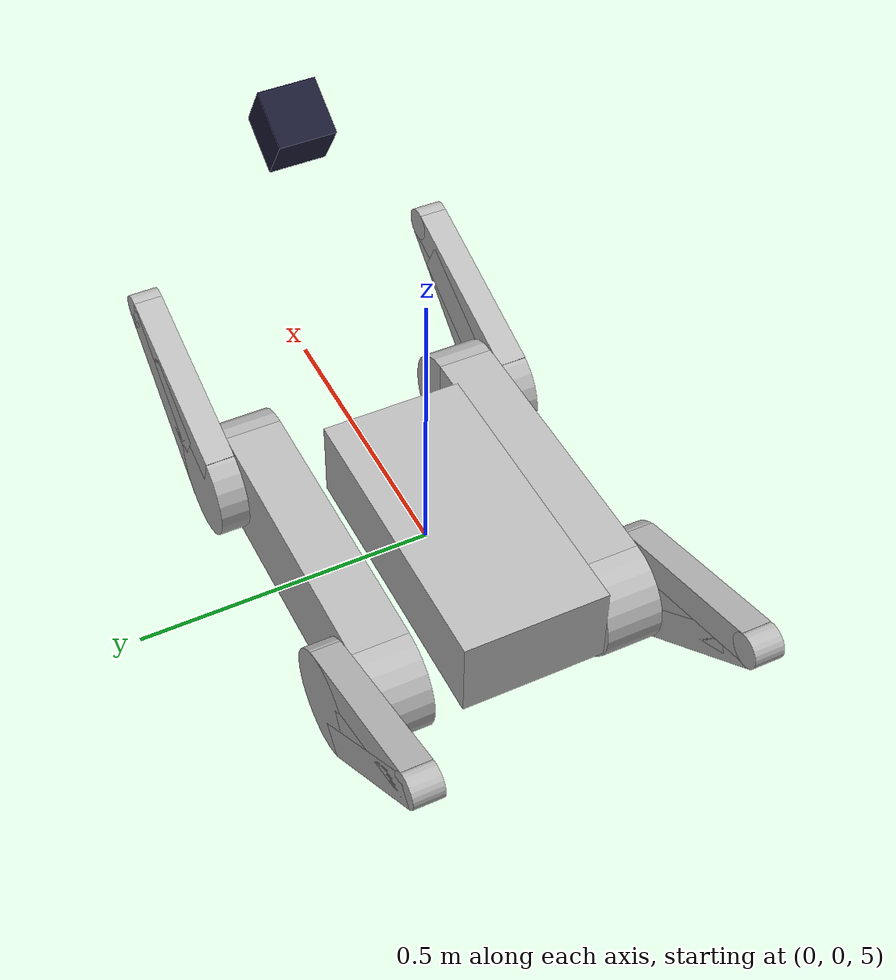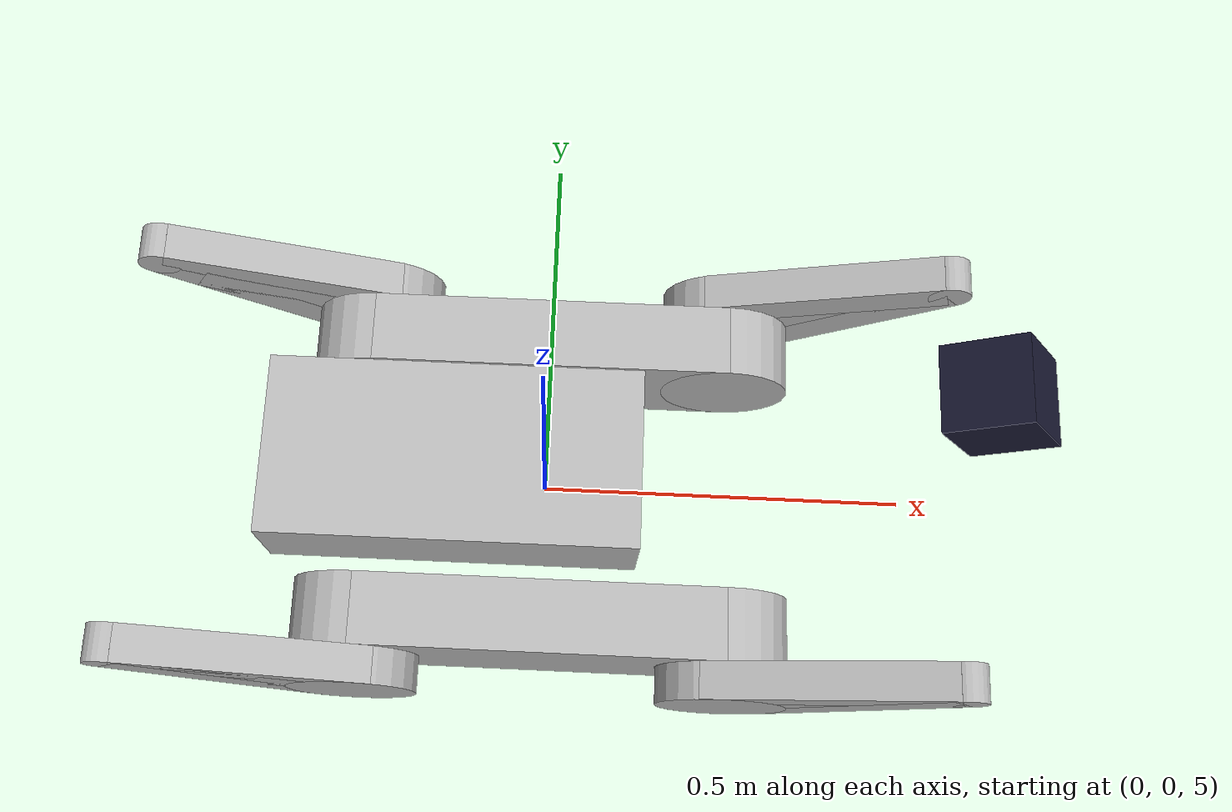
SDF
<sdf version="1.9">
 <world name="world_demo">
  <physics type="dart">
   <real_time_factor>2</real_time_factor>
   <dart><solver><solver_type>pgs</solver_type></solver><collision_detector>ode</collision_detector></dart>
   <max_step_size>0.001</max_step_size>
   <real_time_update_rate>1000</real_time_update_rate>
  </physics>
  <plugin name="gz::sim::systems::Physics" filename="gz-sim-physics-system"/>
  <plugin name="gz::sim::systems::Sensors" filename="gz-sim-sensors-system">
   <render_engine>ogre2</render_engine>
  </plugin>
  <plugin name="gz::sim::systems::SceneBroadcaster" filename="gz-sim-scene-broadcaster-system"/>
  <gravity>0 0 -9.8000000000000007</gravity>
  <atmosphere type="adiabatic"/>
  <magnetic_field>5.5644999999999998e-06 2.2875799999999999e-05 -4.2388400000000002e-05</magnetic_field>
  <scene>
   <ambient>0.400000006 0.400000006 0.400000006 1</ambient>
   <background>0.699999988 0.699999988 0.699999988 1</background>
   <shadows>true</shadows>
  </scene>
  <model name="simple_tracked">
   <pose>0 -0 5 0 0 0</pose>
   <plugin name="gz::sim::systems::TriggeredPublisher" filename="gz-sim-triggered-publisher-system">
    <input type="gz.msgs.Int32" topic="/keyboard/keypress"><match field="data">87</match></input>
    <output type="gz.msgs.Twist" topic="/model/simple_tracked/cmd_vel">linear: {x: 1.0}, angular: {z: 0.0}</output>
   </plugin>
   <plugin name="gz::sim::systems::TriggeredPublisher" filename="gz-sim-triggered-publisher-system">
    <input type="gz.msgs.Int32" topic="/keyboard/keypress"><match field="data">88</match></input>
    <output type="gz.msgs.Twist" topic="/model/simple_tracked/cmd_vel">linear: {x: -1.0}, angular: {z: 0.0}</output>
   </plugin>
   <plugin name="gz::sim::systems::TriggeredPublisher" filename="gz-sim-triggered-publisher-system">
    <input type="gz.msgs.Int32" topic="/keyboard/keypress"><match field="data">83</match></input>
    <output type="gz.msgs.Twist" topic="/model/simple_tracked/cmd_vel">linear: {x: 0.0}, angular: {z: 0.0}</output>
   </plugin>
   <plugin name="gz::sim::systems::TriggeredPublisher" filename="gz-sim-triggered-publisher-system">
    <input type="gz.msgs.Int32" topic="/keyboard/keypress"><match field="data">65</match></input>
    <output type="gz.msgs.Twist" topic="/model/simple_tracked/cmd_vel">linear: {x: 0.0}, angular: {z: 1.0}</output>
   </plugin>
   <plugin name="gz::sim::systems::TriggeredPublisher" filename="gz-sim-triggered-publisher-system">
    <input type="gz.msgs.Int32" topic="/keyboard/keypress"><match field="data">68</match></input>
    <output type="gz.msgs.Twist" topic="/model/simple_tracked/cmd_vel">linear: {x: 0.0}, angular: {z: -1.0}</output>
   </plugin>
   <plugin name="gz::sim::systems::TriggeredPublisher" filename="gz-sim-triggered-publisher-system">
    <input type="gz.msgs.Int32" topic="/keyboard/keypress"><match field="data">81</match></input>
    <output type="gz.msgs.Twist" topic="/model/simple_tracked/cmd_vel">linear: {x: 1.0}, angular: {z: 1.0}</output>
   </plugin>
   <plugin name="gz::sim::systems::TriggeredPublisher" filename="gz-sim-triggered-publisher-system">
    <input type="gz.msgs.Int32" topic="/keyboard/keypress"><match field="data">69</match></input>
    <output type="gz.msgs.Twist" topic="/model/simple_tracked/cmd_vel">linear: {x: 1.0}, angular: {z: -1.0}</output>
   </plugin>
   <plugin name="gz::sim::systems::TriggeredPublisher" filename="gz-sim-triggered-publisher-system">
    <input type="gz.msgs.Int32" topic="/keyboard/keypress"><match field="data">90</match></input>
    <output type="gz.msgs.Twist" topic="/model/simple_tracked/cmd_vel">linear: {x: -1.0}, angular: {z: 1.0}</output>
   </plugin>
   <plugin name="gz::sim::systems::TriggeredPublisher" filename="gz-sim-triggered-publisher-system">
    <input type="gz.msgs.Int32" topic="/keyboard/keypress"><match field="data">67</match></input>
    <output type="gz.msgs.Twist" topic="/model/simple_tracked/cmd_vel">linear: {x: -1.0}, angular: {z: -1.0}</output>
   </plugin>
   <link name="base_link">
    <sensor name="sensorsensor" type="imu">
     <always_on>1</always_on>
     <update_rate>1</update_rate>
     <visualize>1</visualize>
     <topic>imu</topic>
    </sensor>
    <inertial>
     <pose>-0.122 0 0.11799999999999999 1.5708 0 0</pose>
     <mass>1</mass>
     <inertia>
      <ixx>0.10019</ixx>
      <ixy>0</ixy>
      <ixz>0</ixz>
      <iyy>0.34504299999999999</iyy>
      <iyz>0</iyz>
      <izz>0.30204399999999998</izz>
     </inertia>
    </inertial>
    <collision name="base_link_collision">
     <pose>-0.122 0 0.11799999999999999 0 0 0</pose>
     <geometry><box><size>0.50017 0.24093000000000001 0.13900000000000001</size></box></geometry>
    </collision>
    <visual name="base_link_visual">
     <pose>-0.122 0 0.11799999999999999 0 0 0</pose>
     <geometry><box><size>0.50017 0.24093000000000001 0.13900000000000001</size></box></geometry>
    </visual>
   </link>
   <link name="dc">
    <pose>.5 0 .5 0 1 0</pose>
    <inertial>
     <mass>1</mass>
     <inertia>
      <ixx>0.00016666700000000001</ixx>
      <iyy>0.00016666700000000001</iyy>
      <izz>0.00016666700000000001</izz>
      <ixy>0</ixy>
      <ixz>0</ixz>
      <iyz>0</iyz>
     </inertia>
    </inertial>
    <collision name="collision">
     <geometry><box><size>0.10000000000000001 0.10000000000000001 0.10000000000000001</size></box></geometry>
    </collision>
    <visual name="visual">
     <geometry><box><size>0.10000000000000001 0.10000000000000001 0.10000000000000001</size></box></geometry>
     <material>
      <ambient>0.100000001 0.100000001 0.100000001 1</ambient>
      <diffuse>0.100000001 0.100000001 0.200000003 1</diffuse>
      <specular>0 0 0 0</specular>
      <emissive>0 0 0 1</emissive>
     </material>
    </visual>
    <sensor name="depth_camera1" type="depth_camera">
     <topic>dec</topic>
     <visualize>true</visualize>
     <update_rate>4</update_rate>
     <enable_metrics>false</enable_metrics>
     <camera name="__default__">
      <horizontal_fov>1.0469999999999999</horizontal_fov>
      <image><width>2</width><height>2</height><format>R_FLOAT16</format><anti_aliasing>0</anti_aliasing></image>
      <camera_info_topic>__default__</camera_info_topic>
      <triggered>false</triggered>
      <clip><near>0.10000000000000001</near><far>100</far></clip>
      <save enabled="false"><path>__default__</path></save>
      <visibility_mask>4294967295</visibility_mask>
      <noise><type>none</type><mean>0</mean><stddev>0</stddev></noise>
      <distortion><k1>0</k1><k2>0</k2><k3>0</k3><p1>0</p1><p2>0</p2><center>0.5 0.5</center></distortion>
      <lens>
       <type>equidistant</type>
       <scale_to_hfov>true</scale_to_hfov>
       <cutoff_angle>1.5707</cutoff_angle>
       <env_texture_size>4</env_texture_size>
      </lens>
     </camera>
    </sensor>
   </link>
   <joint name="j" type="fixed"><child>base_link</child><parent>dc</parent></joint>
   <link name="left_track">
    <pose>0 0.19849999999999923 0 0 0 0</pose>
    <inertial>
     <pose>0 0 0.0141 0 0 0</pose>
     <mass>6.0599999999999996</mass>
     <inertia>
      <ixx>0.0027309999999999999</ixx>
      <ixy>0</ixy>
      <ixz>0</ixz>
      <iyy>0.032554</iyy>
      <iyz>1.5e-05</iyz>
      <izz>0.031391000000000002</izz>
     </inertia>
    </inertial>
    <collision name="left_track_collision">
     <pose>0 0 0.018550000000000001 1.5708 -5.5511151231257827e-17 1.5708</pose>
     <geometry><box><size>0.097280000000000005 0.18093999999999999 0.5</size></box></geometry>
     <surface>
      <friction><ode><mu>0.69999999999999996</mu><mu2>150</mu2><fdir1>0 1 0</fdir1></ode></friction>
     </surface>
    </collision>
    <collision name="left_track_collision_1">
     <pose>0.25 0 0.018550000000000001 1.5708 0 0</pose>
     <geometry>
      <cylinder><length>0.097280000000000005</length><radius>0.090469999999999995</radius></cylinder>
     </geometry>
     <surface>
      <friction><ode><mu>0.69999999999999996</mu><mu2>150</mu2><fdir1>0 1 0</fdir1></ode></friction>
     </surface>
    </collision>
    <collision name="left_track_collision_2">
     <pose>-0.25 0 0.018550000000000001 1.5708 0 0</pose>
     <geometry>
      <cylinder><length>0.097280000000000005</length><radius>0.090469999999999995</radius></cylinder>
     </geometry>
     <surface>
      <friction><ode><mu>0.69999999999999996</mu><mu2>150</mu2><fdir1>0 1 0</fdir1></ode></friction>
     </surface>
    </collision>
    <visual name="left_track_visual">
     <pose>0 0 0.018550000000000001 1.5708 -5.5511151231257827e-17 1.5708</pose>
     <geometry><box><size>0.097280000000000005 0.18093999999999999 0.5</size></box></geometry>
    </visual>
    <visual name="left_track_visual_1">
     <pose>0.25 0 0.018550000000000001 1.5708 0 0</pose>
     <geometry>
      <cylinder><length>0.097280000000000005</length><radius>0.090469999999999995</radius></cylinder>
     </geometry>
    </visual>
    <visual name="left_track_visual_2">
     <pose>-0.25 0 0.018550000000000001 1.5708 0 0</pose>
     <geometry>
      <cylinder><length>0.097280000000000005</length><radius>0.090469999999999995</radius></cylinder>
     </geometry>
    </visual>
   </link>
   <joint name="left_track_j" type="fixed"><child>left_track</child><parent>base_link</parent></joint>
   <link name="right_track">
    <pose>0 -0.19849999999999923 0 0 0 0</pose>
    <inertial>
     <pose>0 0 0.0141 0 0 0</pose>
     <mass>6.0599999999999996</mass>
     <inertia>
      <ixx>0.0027309999999999999</ixx>
      <ixy>0</ixy>
      <ixz>0</ixz>
      <iyy>0.032554</iyy>
      <iyz>1.5e-05</iyz>
      <izz>0.031391000000000002</izz>
     </inertia>
    </inertial>
    <collision name="right_track_collision">
     <pose>0 0 0.018550000000000001 1.5708 -5.5511151231257827e-17 1.5708</pose>
     <geometry><box><size>0.097280000000000005 0.18093999999999999 0.5</size></box></geometry>
     <surface>
      <friction><ode><mu>0.69999999999999996</mu><mu2>150</mu2><fdir1>0 1 0</fdir1></ode></friction>
     </surface>
    </collision>
    <collision name="right_track_collision_1">
     <pose>0.25 0 0.018550000000000001 1.5708 0 0</pose>
     <geometry>
      <cylinder><length>0.097280000000000005</length><radius>0.090469999999999995</radius></cylinder>
     </geometry>
     <surface>
      <friction><ode><mu>0.69999999999999996</mu><mu2>150</mu2><fdir1>0 1 0</fdir1></ode></friction>
     </surface>
    </collision>
    <collision name="right_track_collision_2">
     <pose>-0.25 0 0.018550000000000001 1.5708 0 0</pose>
     <geometry>
      <cylinder><length>0.097280000000000005</length><radius>0.090469999999999995</radius></cylinder>
     </geometry>
     <surface>
      <friction><ode><mu>0.69999999999999996</mu><mu2>150</mu2><fdir1>0 1 0</fdir1></ode></friction>
     </surface>
    </collision>
    <visual name="right_track_visual">
     <pose>0 0 0.018550000000000001 1.5708 -5.5511151231257827e-17 1.5708</pose>
     <geometry><box><size>0.097280000000000005 0.18093999999999999 0.5</size></box></geometry>
    </visual>
    <visual name="right_track_visual_1">
     <pose>0.25 0 0.018550000000000001 1.5708 0 0</pose>
     <geometry>
      <cylinder><length>0.097280000000000005</length><radius>0.090469999999999995</radius></cylinder>
     </geometry>
    </visual>
    <visual name="right_track_visual_2">
     <pose>-0.25 0 0.018550000000000001 1.5708 0 0</pose>
     <geometry>
      <cylinder><length>0.097280000000000005</length><radius>0.090469999999999995</radius></cylinder>
     </geometry>
    </visual>
   </link>
   <joint name="right_track_j" type="fixed"><child>right_track</child><parent>base_link</parent></joint>
   <link name="front_left_flipper">
    <pose>0.25 0.27199999999999847 0.019499999999999851 0 -0.50000000000000011 0</pose>
    <inertial>
     <pose>0.080000000000000002 0 0 0 0 0</pose>
     <mass>0.75</mass>
     <inertia>
      <ixx>0.0017491</ixx>
      <ixy>2.8512e-07</ixy>
      <ixz>0.0018277</ixz>
      <iyy>0.012277</iyy>
      <iyz>-3.6287999999999998e-07</iyz>
      <izz>0.010940999999999999</izz>
     </inertia>
    </inertial>
    <collision name="front_left_flipper_collision_large_wheel_collision">
     <pose>0 0 0 1.5708 0 0</pose>
     <geometry><cylinder><length>0.04981</length><radius>0.088999999999999996</radius></cylinder></geometry>
     <surface>
      <friction><ode><mu>0.69999999999999996</mu><mu2>150</mu2><fdir1>0 1 0</fdir1></ode></friction>
     </surface>
     <max_contacts>20</max_contacts>
    </collision>
    <collision name="front_left_flipper_collision_small_wheel_collision_1">
     <pose>0.33000000000000002 0 0 1.5708 0 0</pose>
     <geometry><cylinder><length>0.04981</length><radius>0.029000000000000001</radius></cylinder></geometry>
     <surface>
      <friction><ode><mu>0.69999999999999996</mu><mu2>150</mu2><fdir1>0 1 0</fdir1></ode></friction>
     </surface>
     <max_contacts>20</max_contacts>
    </collision>
    <collision name="front_left_flipper_collision_top_bar_collision_2">
     <pose>0.16500000000000001 0 0.032500000000000001 0 0.18416199999999999 0</pose>
     <geometry><box><size>0.33000000000000002 0.04981 0.055</size></box></geometry>
     <surface>
      <friction><ode><mu>0.69999999999999996</mu><mu2>150</mu2><fdir1>0 1 0</fdir1></ode></friction>
     </surface>
     <max_contacts>20</max_contacts>
    </collision>
    <collision name="front_left_flipper_collision_bottom_bar_collision_3">
     <pose>0.16500000000000001 0 -0.032500000000000001 0 -0.18416199999999999 0</pose>
     <geometry><box><size>0.33000000000000002 0.04981 0.055</size></box></geometry>
     <surface>
      <friction><ode><mu>0.69999999999999996</mu><mu2>150</mu2><fdir1>0 1 0</fdir1></ode></friction>
     </surface>
     <max_contacts>20</max_contacts>
    </collision>
    <collision name="front_left_flipper_collision_middle_bar_collision_4">
     <pose>0.16600000000000001 0 0.0040000000000000001 0 -0.02 0</pose>
     <geometry><box><size>0.20000000000000001 0.04981 0.070000000000000007</size></box></geometry>
     <surface>
      <friction><ode><mu>0.69999999999999996</mu><mu2>150</mu2><fdir1>0 1 0</fdir1></ode></friction>
     </surface>
     <max_contacts>20</max_contacts>
    </collision>
    <visual name="front_left_flipper_visual_large_wheel_visual">
     <pose>0 0 0 1.5708 0 0</pose>
     <geometry><cylinder><length>0.04981</length><radius>0.088999999999999996</radius></cylinder></geometry>
    </visual>
    <visual name="front_left_flipper_visual_small_wheel_visual_1">
     <pose>0.33000000000000002 0 0 1.5708 0 0</pose>
     <geometry><cylinder><length>0.04981</length><radius>0.029000000000000001</radius></cylinder></geometry>
    </visual>
    <visual name="front_left_flipper_visual_top_bar_visual_2">
     <pose>0.16500000000000001 0 0.032500000000000001 0 0.18416199999999999 0</pose>
     <geometry><box><size>0.33000000000000002 0.04981 0.055</size></box></geometry>
    </visual>
    <visual name="front_left_flipper_visual_bottom_bar_visual_3">
     <pose>0.16500000000000001 0 -0.032500000000000001 0 -0.18416199999999999 0</pose>
     <geometry><box><size>0.33000000000000002 0.04981 0.055</size></box></geometry>
    </visual>
    <visual name="front_left_flipper_visual_middle_bar_visual_4">
     <pose>0.16600000000000001 0 0.0040000000000000001 0 -0.02 0</pose>
     <geometry><box><size>0.20000000000000001 0.04981 0.070000000000000007</size></box></geometry>
    </visual>
    <self_collide>true</self_collide>
   </link>
   <joint name="front_left_flipper_j" type="revolute">
    <child>front_left_flipper</child>
    <parent>left_track</parent>
    <axis>
     <xyz>0 1 0</xyz>
     <limit>
      <lower>0</lower>
      <upper>0</upper>
      <effort>inf</effort>
      <velocity>inf</velocity>
      <stiffness>100000000</stiffness>
      <dissipation>1</dissipation>
     </limit>
     <dynamics>
      <spring_reference>0</spring_reference>
      <spring_stiffness>0</spring_stiffness>
      <damping>0</damping>
      <friction>0</friction>
     </dynamics>
    </axis>
    <physics>
     <ode>
      <implicit_spring_damper>true</implicit_spring_damper>
      <cfm_damping>true</cfm_damping>
      <limit><cfm>0</cfm><erp>0.20000000000000001</erp></limit>
     </ode>
    </physics>
    <pose>-5.5511151231257827e-17 5.5511151231257827e-17 -2.7755575615628914e-17 0 0 0</pose>
   </joint>
   <link name="rear_left_flipper">
    <pose>-0.25 0.27199999999999847 0.019499999999999851 3.1415899999999999 -0.500000000000002 3.1415899999999999</pose>
    <inertial>
     <pose>0.080000000000000002 0 0 0 0 0</pose>
     <mass>0.75</mass>
     <inertia>
      <ixx>0.0017491</ixx>
      <ixy>2.8512e-07</ixy>
      <ixz>0.0018277</ixz>
      <iyy>0.012277</iyy>
      <iyz>-3.6287999999999998e-07</iyz>
      <izz>0.010940999999999999</izz>
     </inertia>
    </inertial>
    <collision name="rear_left_flipper_collision_large_wheel_collision">
     <pose>0 0 0 1.5708 0 0</pose>
     <geometry><cylinder><length>0.04981</length><radius>0.088999999999999996</radius></cylinder></geometry>
     <surface>
      <friction><ode><mu>0.69999999999999996</mu><mu2>150</mu2><fdir1>0 1 0</fdir1></ode></friction>
     </surface>
     <max_contacts>20</max_contacts>
    </collision>
    <collision name="rear_left_flipper_collision_small_wheel_collision_1">
     <pose>0.33000000000000002 0 0 1.5708 0 0</pose>
     <geometry><cylinder><length>0.04981</length><radius>0.029000000000000001</radius></cylinder></geometry>
     <surface>
      <friction><ode><mu>0.69999999999999996</mu><mu2>150</mu2><fdir1>0 1 0</fdir1></ode></friction>
     </surface>
     <max_contacts>20</max_contacts>
    </collision>
    <collision name="rear_left_flipper_collision_top_bar_collision_2">
     <pose>0.16500000000000001 0 0.032500000000000001 0 0.18416199999999999 0</pose>
     <geometry><box><size>0.33000000000000002 0.04981 0.055</size></box></geometry>
     <surface>
      <friction><ode><mu>0.69999999999999996</mu><mu2>150</mu2><fdir1>0 1 0</fdir1></ode></friction>
     </surface>
     <max_contacts>20</max_contacts>
    </collision>
    <collision name="rear_left_flipper_collision_bottom_bar_collision_3">
     <pose>0.16500000000000001 0 -0.032500000000000001 0 -0.18416199999999999 0</pose>
     <geometry><box><size>0.33000000000000002 0.04981 0.055</size></box></geometry>
     <surface>
      <friction><ode><mu>0.69999999999999996</mu><mu2>150</mu2><fdir1>0 1 0</fdir1></ode></friction>
     </surface>
     <max_contacts>20</max_contacts>
    </collision>
    <collision name="rear_left_flipper_collision_middle_bar_collision_4">
     <pose>0.16600000000000001 0 0.0040000000000000001 0 -0.02 0</pose>
     <geometry><box><size>0.20000000000000001 0.04981 0.070000000000000007</size></box></geometry>
     <surface>
      <friction><ode><mu>0.69999999999999996</mu><mu2>150</mu2><fdir1>0 1 0</fdir1></ode></friction>
     </surface>
     <max_contacts>20</max_contacts>
    </collision>
    <visual name="rear_left_flipper_visual_large_wheel_visual">
     <pose>0 0 0 1.5708 0 0</pose>
     <geometry><cylinder><length>0.04981</length><radius>0.088999999999999996</radius></cylinder></geometry>
    </visual>
    <visual name="rear_left_flipper_visual_small_wheel_visual_1">
     <pose>0.33000000000000002 0 0 1.5708 0 0</pose>
     <geometry><cylinder><length>0.04981</length><radius>0.029000000000000001</radius></cylinder></geometry>
    </visual>
    <visual name="rear_left_flipper_visual_top_bar_visual_2">
     <pose>0.16500000000000001 0 0.032500000000000001 0 0.18416199999999999 0</pose>
     <geometry><box><size>0.33000000000000002 0.04981 0.055</size></box></geometry>
    </visual>
    <visual name="rear_left_flipper_visual_bottom_bar_visual_3">
     <pose>0.16500000000000001 0 -0.032500000000000001 0 -0.18416199999999999 0</pose>
     <geometry><box><size>0.33000000000000002 0.04981 0.055</size></box></geometry>
    </visual>
    <visual name="rear_left_flipper_visual_middle_bar_visual_4">
     <pose>0.16600000000000001 0 0.0040000000000000001 0 -0.02 0</pose>
     <geometry><box><size>0.20000000000000001 0.04981 0.070000000000000007</size></box></geometry>
    </visual>
    <self_collide>true</self_collide>
   </link>
   <joint name="rear_left_flipper_j" type="revolute">
    <child>rear_left_flipper</child>
    <parent>left_track</parent>
    <axis>
     <xyz>2.3287441290566336e-06 0.99999999998958267 3.9257885092516563e-06</xyz>
     <limit>
      <lower>0</lower>
      <upper>0</upper>
      <effort>inf</effort>
      <velocity>inf</velocity>
      <stiffness>100000000</stiffness>
      <dissipation>1</dissipation>
     </limit>
     <dynamics>
      <spring_reference>0</spring_reference>
      <spring_stiffness>0</spring_stiffness>
      <damping>0</damping>
      <friction>0</friction>
     </dynamics>
    </axis>
    <physics>
     <ode>
      <implicit_spring_damper>true</implicit_spring_damper>
      <cfm_damping>true</cfm_damping>
      <limit><cfm>0</cfm><erp>0.20000000000000001</erp></limit>
     </ode>
    </physics>
    <pose>1.3877787807814457e-16 1.1102230246251565e-16 5.5511151231257827e-17 -1.9638905355534288e-39 6.182807227414953e-18 -6.3527471044072525e-22</pose>
   </joint>
   <link name="front_right_flipper">
    <pose>0.25 -0.27199999999999847 0.019499999999999851 3.1415899999999999 0.50000000000000078 3.1415899999999999</pose>
    <inertial>
     <pose>-0.080000000000000002 0 0 0 0 0</pose>
     <mass>0.75</mass>
     <inertia>
      <ixx>0.0017491</ixx>
      <ixy>2.8512e-07</ixy>
      <ixz>0.0018277</ixz>
      <iyy>0.012277</iyy>
      <iyz>-3.6287999999999998e-07</iyz>
      <izz>0.010940999999999999</izz>
     </inertia>
    </inertial>
    <collision name="front_right_flipper_collision_large_wheel_collision">
     <pose>0 0 0 1.5708 0 0</pose>
     <geometry><cylinder><length>0.04981</length><radius>0.088999999999999996</radius></cylinder></geometry>
     <surface>
      <friction><ode><mu>0.69999999999999996</mu><mu2>150</mu2><fdir1>0 1 0</fdir1></ode></friction>
     </surface>
     <max_contacts>20</max_contacts>
    </collision>
    <collision name="front_right_flipper_collision_small_wheel_collision_1">
     <pose>-0.33000000000000002 0 0 1.5708 0 0</pose>
     <geometry><cylinder><length>0.04981</length><radius>0.029000000000000001</radius></cylinder></geometry>
     <surface>
      <friction><ode><mu>0.69999999999999996</mu><mu2>150</mu2><fdir1>0 1 0</fdir1></ode></friction>
     </surface>
     <max_contacts>20</max_contacts>
    </collision>
    <collision name="front_right_flipper_collision_top_bar_collision_2">
     <pose>-0.16500000000000001 0 0.032500000000000001 0 0.18416199999999999 -3.1415899999999999</pose>
     <geometry><box><size>0.33000000000000002 0.04981 0.055</size></box></geometry>
     <surface>
      <friction><ode><mu>0.69999999999999996</mu><mu2>150</mu2><fdir1>0 1 0</fdir1></ode></friction>
     </surface>
     <max_contacts>20</max_contacts>
    </collision>
    <collision name="front_right_flipper_collision_bottom_bar_collision_3">
     <pose>-0.16500000000000001 0 -0.032500000000000001 0 -0.18416199999999999 -3.1415899999999999</pose>
     <geometry><box><size>0.33000000000000002 0.04981 0.055</size></box></geometry>
     <surface>
      <friction><ode><mu>0.69999999999999996</mu><mu2>150</mu2><fdir1>0 1 0</fdir1></ode></friction>
     </surface>
     <max_contacts>20</max_contacts>
    </collision>
    <collision name="front_right_flipper_collision_middle_bar_collision_4">
     <pose>-0.16600000000000001 0 0.0040000000000000001 -6.6187686100216883e-24 -0.020000000000000011 -3.1415899999999999</pose>
     <geometry><box><size>0.20000000000000001 0.04981 0.070000000000000007</size></box></geometry>
     <surface>
      <friction><ode><mu>0.69999999999999996</mu><mu2>150</mu2><fdir1>0 1 0</fdir1></ode></friction>
     </surface>
     <max_contacts>20</max_contacts>
    </collision>
    <visual name="front_right_flipper_visual_large_wheel_visual">
     <pose>0 0 0 1.5708 0 0</pose>
     <geometry><cylinder><length>0.04981</length><radius>0.088999999999999996</radius></cylinder></geometry>
    </visual>
    <visual name="front_right_flipper_visual_small_wheel_visual_1">
     <pose>-0.33000000000000002 0 0 1.5708 0 0</pose>
     <geometry><cylinder><length>0.04981</length><radius>0.029000000000000001</radius></cylinder></geometry>
    </visual>
    <visual name="front_right_flipper_visual_top_bar_visual_2">
     <pose>-0.16500000000000001 0 0.032500000000000001 0 0.18416199999999999 -3.1415899999999999</pose>
     <geometry><box><size>0.33000000000000002 0.04981 0.055</size></box></geometry>
    </visual>
    <visual name="front_right_flipper_visual_bottom_bar_visual_3">
     <pose>-0.16500000000000001 0 -0.032500000000000001 0 -0.18416199999999999 -3.1415899999999999</pose>
     <geometry><box><size>0.33000000000000002 0.04981 0.055</size></box></geometry>
    </visual>
    <visual name="front_right_flipper_visual_middle_bar_visual_4">
     <pose>-0.16600000000000001 0 0.0040000000000000001 -6.6187686100216883e-24 -0.020000000000000011 -3.1415899999999999</pose>
     <geometry><box><size>0.20000000000000001 0.04981 0.070000000000000007</size></box></geometry>
    </visual>
    <self_collide>true</self_collide>
   </link>
   <joint name="front_right_flipper_j" type="revolute">
    <child>front_right_flipper</child>
    <parent>right_track</parent>
    <axis>
     <xyz>2.3287441290566328e-06 0.99999999999633438 1.381391077435118e-06</xyz>
     <limit>
      <lower>0</lower>
      <upper>0</upper>
      <effort>inf</effort>
      <velocity>inf</velocity>
      <stiffness>100000000</stiffness>
      <dissipation>1</dissipation>
     </limit>
     <dynamics>
      <spring_reference>0</spring_reference>
      <spring_stiffness>0</spring_stiffness>
      <damping>0</damping>
      <friction>0</friction>
     </dynamics>
    </axis>
    <physics>
     <ode>
      <implicit_spring_damper>true</implicit_spring_damper>
      <cfm_damping>true</cfm_damping>
      <limit><cfm>0</cfm><erp>0.20000000000000001</erp></limit>
     </ode>
    </physics>
    <pose>-2.2204460492503131e-16 -1.1102230246251565e-16 1.3877787807814457e-17 4.2351647362715026e-22 -1.0951659191689344e-17 -2.319104040615319e-39</pose>
   </joint>
   <link name="rear_right_flipper">
    <pose>-0.25 -0.27199999999999847 0.019499999999999851 0 0.50000000000000011 0</pose>
    <inertial>
     <pose>-0.080000000000000002 0 0 0 0 0</pose>
     <mass>0.75</mass>
     <inertia>
      <ixx>0.0017491</ixx>
      <ixy>2.8512e-07</ixy>
      <ixz>0.0018277</ixz>
      <iyy>0.012277</iyy>
      <iyz>-3.6287999999999998e-07</iyz>
      <izz>0.010940999999999999</izz>
     </inertia>
    </inertial>
    <collision name="rear_right_flipper_collision_large_wheel_collision">
     <pose>0 0 0 1.5708 0 0</pose>
     <geometry><cylinder><length>0.04981</length><radius>0.088999999999999996</radius></cylinder></geometry>
     <surface>
      <friction><ode><mu>0.69999999999999996</mu><mu2>150</mu2><fdir1>0 1 0</fdir1></ode></friction>
     </surface>
     <max_contacts>20</max_contacts>
    </collision>
    <collision name="rear_right_flipper_collision_small_wheel_collision_1">
     <pose>-0.33000000000000002 0 0 1.5708 0 0</pose>
     <geometry><cylinder><length>0.04981</length><radius>0.029000000000000001</radius></cylinder></geometry>
     <surface>
      <friction><ode><mu>0.69999999999999996</mu><mu2>150</mu2><fdir1>0 1 0</fdir1></ode></friction>
     </surface>
     <max_contacts>20</max_contacts>
    </collision>
    <collision name="rear_right_flipper_collision_top_bar_collision_2">
     <pose>-0.16500000000000001 0 0.032500000000000001 0 0.18416199999999999 -3.1415899999999999</pose>
     <geometry><box><size>0.33000000000000002 0.04981 0.055</size></box></geometry>
     <surface>
      <friction><ode><mu>0.69999999999999996</mu><mu2>150</mu2><fdir1>0 1 0</fdir1></ode></friction>
     </surface>
     <max_contacts>20</max_contacts>
    </collision>
    <collision name="rear_right_flipper_collision_bottom_bar_collision_3">
     <pose>-0.16500000000000001 0 -0.032500000000000001 0 -0.18416199999999999 -3.1415899999999999</pose>
     <geometry><box><size>0.33000000000000002 0.04981 0.055</size></box></geometry>
     <surface>
      <friction><ode><mu>0.69999999999999996</mu><mu2>150</mu2><fdir1>0 1 0</fdir1></ode></friction>
     </surface>
     <max_contacts>20</max_contacts>
    </collision>
    <collision name="rear_right_flipper_collision_middle_bar_collision_4">
     <pose>-0.16600000000000001 0 0.0040000000000000001 -6.6187686100216883e-24 -0.020000000000000011 -3.1415899999999999</pose>
     <geometry><box><size>0.20000000000000001 0.04981 0.070000000000000007</size></box></geometry>
     <surface>
      <friction><ode><mu>0.69999999999999996</mu><mu2>150</mu2><fdir1>0 1 0</fdir1></ode></friction>
     </surface>
     <max_contacts>20</max_contacts>
    </collision>
    <visual name="rear_right_flipper_visual_large_wheel_visual">
     <pose>0 0 0 1.5708 0 0</pose>
     <geometry><cylinder><length>0.04981</length><radius>0.088999999999999996</radius></cylinder></geometry>
    </visual>
    <visual name="rear_right_flipper_visual_small_wheel_visual_1">
     <pose>-0.33000000000000002 0 0 1.5708 0 0</pose>
     <geometry><cylinder><length>0.04981</length><radius>0.029000000000000001</radius></cylinder></geometry>
    </visual>
    <visual name="rear_right_flipper_visual_top_bar_visual_2">
     <pose>-0.16500000000000001 0 0.032500000000000001 0 0.18416199999999999 -3.1415899999999999</pose>
     <geometry><box><size>0.33000000000000002 0.04981 0.055</size></box></geometry>
    </visual>
    <visual name="rear_right_flipper_visual_bottom_bar_visual_3">
     <pose>-0.16500000000000001 0 -0.032500000000000001 0 -0.18416199999999999 -3.1415899999999999</pose>
     <geometry><box><size>0.33000000000000002 0.04981 0.055</size></box></geometry>
    </visual>
    <visual name="rear_right_flipper_visual_middle_bar_visual_4">
     <pose>-0.16600000000000001 0 0.0040000000000000001 -6.6187686100216883e-24 -0.020000000000000011 -3.1415899999999999</pose>
     <geometry><box><size>0.20000000000000001 0.04981 0.070000000000000007</size></box></geometry>
    </visual>
    <self_collide>true</self_collide>
   </link>
   <joint name="rear_right_flipper_j" type="revolute">
    <child>rear_right_flipper</child>
    <parent>right_track</parent>
    <axis>
     <xyz>0 1 0</xyz>
     <limit>
      <lower>0</lower>
      <upper>0</upper>
      <effort>inf</effort>
      <velocity>inf</velocity>
      <stiffness>100000000</stiffness>
      <dissipation>1</dissipation>
     </limit>
     <dynamics>
      <spring_reference>0</spring_reference>
      <spring_stiffness>0</spring_stiffness>
      <damping>0</damping>
      <friction>0</friction>
     </dynamics>
    </axis>
    <physics>
     <ode>
      <implicit_spring_damper>true</implicit_spring_damper>
      <cfm_damping>true</cfm_damping>
      <limit><cfm>0</cfm><erp>0.20000000000000001</erp></limit>
     </ode>
    </physics>
    <pose>5.5511151231257827e-17 -5.5511151231257827e-17 -2.7755575615628914e-17 0 0 0</pose>
   </joint>
   <plugin name="gz::sim::systems::TrackedVehicle" filename="gz-sim-tracked-vehicle-system">
    <left_track><link>left_track</link></left_track>
    <left_track><link>front_left_flipper</link></left_track>
    <left_track><link>rear_left_flipper</link></left_track>
    <right_track><link>right_track</link></right_track>
    <right_track><link>front_right_flipper</link></right_track>
    <right_track><link>rear_right_flipper</link></right_track>
    <tracks_separation>0.4</tracks_separation>
    <tracks_height>0.18094</tracks_height>
    <steering_efficiency>0.5</steering_efficiency>
   </plugin>
   <plugin name="gz::sim::systems::TrackController" filename="gz-sim-track-controller-system">
    <link>left_track</link>
    <min_velocity>-1.0</min_velocity>
    <max_velocity>1.0</max_velocity>
   </plugin>
   <plugin name="gz::sim::systems::TrackController" filename="gz-sim-track-controller-system">
    <link>right_track</link>
    <min_velocity>-1.0</min_velocity>
    <max_velocity>1.0</max_velocity>
   </plugin>
   <plugin name="gz::sim::systems::TrackController" filename="gz-sim-track-controller-system">
    <link>front_left_flipper</link>
    <min_velocity>-1.0</min_velocity>
    <max_velocity>1.0</max_velocity>
   </plugin>
   <plugin name="gz::sim::systems::TrackController" filename="gz-sim-track-controller-system">
    <link>rear_left_flipper</link>
    <min_velocity>-1.0</min_velocity>
    <max_velocity>1.0</max_velocity>
   </plugin>
   <plugin name="gz::sim::systems::TrackController" filename="gz-sim-track-controller-system">
    <link>front_right_flipper</link>
    <min_velocity>-1.0</min_velocity>
    <max_velocity>1.0</max_velocity>
   </plugin>
   <plugin name="gz::sim::systems::TrackController" filename="gz-sim-track-controller-system">
    <link>rear_right_flipper</link>
    <min_velocity>-1.0</min_velocity>
    <max_velocity>1.0</max_velocity>
   </plugin>
   <plugin name="gz::sim::systems::TriggeredPublisher" filename="gz-sim-triggered-publisher-system">
    <input type="gz.msgs.Int32" topic="/keyboard/keypress"><match field="data">87</match></input>
    <output type="gz.msgs.Twist" topic="/model/simple_tracked/cmd_vel">linear: {x: 1.0}, angular: {z: 0.0}</output>
   </plugin>
   <plugin name="gz::sim::systems::TriggeredPublisher" filename="gz-sim-triggered-publisher-system">
    <input type="gz.msgs.Int32" topic="/keyboard/keypress"><match field="data">88</match></input>
    <output type="gz.msgs.Twist" topic="/model/simple_tracked/cmd_vel">linear: {x: -1.0}, angular: {z: 0.0}</output>
   </plugin>
   <plugin name="gz::sim::systems::TriggeredPublisher" filename="gz-sim-triggered-publisher-system">
    <input type="gz.msgs.Int32" topic="/keyboard/keypress"><match field="data">83</match></input>
    <output type="gz.msgs.Twist" topic="/model/simple_tracked/cmd_vel">linear: {x: 0.0}, angular: {z: 0.0}</output>
   </plugin>
   <plugin name="gz::sim::systems::TriggeredPublisher" filename="gz-sim-triggered-publisher-system">
    <input type="gz.msgs.Int32" topic="/keyboard/keypress"><match field="data">65</match></input>
    <output type="gz.msgs.Twist" topic="/model/simple_tracked/cmd_vel">linear: {x: 0.0}, angular: {z: 1.0}</output>
   </plugin>
   <plugin name="gz::sim::systems::TriggeredPublisher" filename="gz-sim-triggered-publisher-system">
    <input type="gz.msgs.Int32" topic="/keyboard/keypress"><match field="data">68</match></input>
    <output type="gz.msgs.Twist" topic="/model/simple_tracked/cmd_vel">linear: {x: 0.0}, angular: {z: -1.0}</output>
   </plugin>
   <plugin name="gz::sim::systems::TriggeredPublisher" filename="gz-sim-triggered-publisher-system">
    <input type="gz.msgs.Int32" topic="/keyboard/keypress"><match field="data">81</match></input>
    <output type="gz.msgs.Twist" topic="/model/simple_tracked/cmd_vel">linear: {x: 1.0}, angular: {z: 1.0}</output>
   </plugin>
   <plugin name="gz::sim::systems::TriggeredPublisher" filename="gz-sim-triggered-publisher-system">
    <input type="gz.msgs.Int32" topic="/keyboard/keypress"><match field="data">69</match></input>
    <output type="gz.msgs.Twist" topic="/model/simple_tracked/cmd_vel">linear: {x: 1.0}, angular: {z: -1.0}</output>
   </plugin>
   <plugin name="gz::sim::systems::TriggeredPublisher" filename="gz-sim-triggered-publisher-system">
    <input type="gz.msgs.Int32" topic="/keyboard/keypress"><match field="data">90</match></input>
    <output type="gz.msgs.Twist" topic="/model/simple_tracked/cmd_vel">linear: {x: -1.0}, angular: {z: 1.0}</output>
   </plugin>
   <plugin name="gz::sim::systems::TriggeredPublisher" filename="gz-sim-triggered-publisher-system">
    <input type="gz.msgs.Int32" topic="/keyboard/keypress"><match field="data">67</match></input>
    <output type="gz.msgs.Twist" topic="/model/simple_tracked/cmd_vel">linear: {x: -1.0}, angular: {z: -1.0}</output>
   </plugin>
   <static>false</static>
  </model>
  <light name="sun" type="directional">
   <pose>0 0 10 0 0 0</pose>
   <intensity>1</intensity>
   <direction>-0.5 0.10000000000000001 -0.90000000000000002</direction>
   <diffuse>0.800000012 0.800000012 0.800000012 1</diffuse>
   <specular>0.200000003 0.200000003 0.200000003 1</specular>
   <attenuation>
    <range>1000</range>
    <linear>0.01</linear>
    <constant>0.90000000000000002</constant>
    <quadratic>0.001</quadratic>
   </attenuation>
   <spot><inner_angle>0</inner_angle><outer_angle>0</outer_angle><falloff>0</falloff></spot>
  </light>
 </world>
</sdf>
